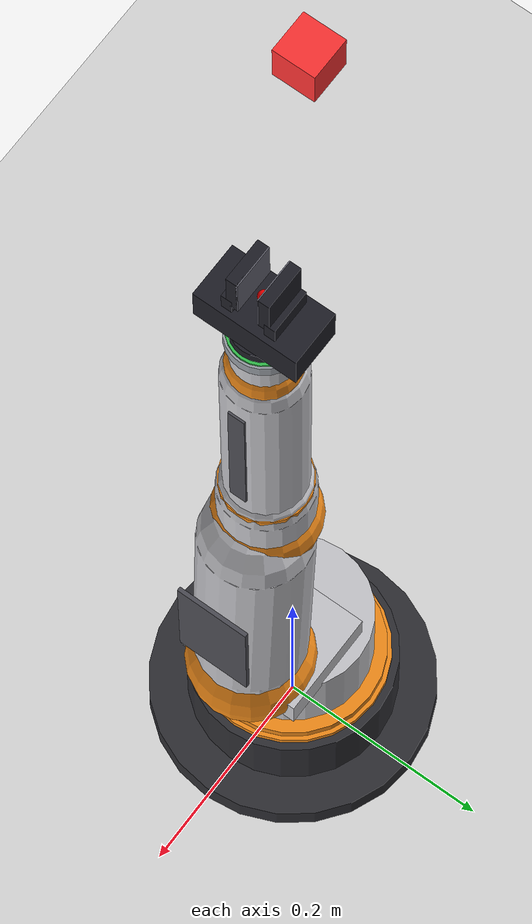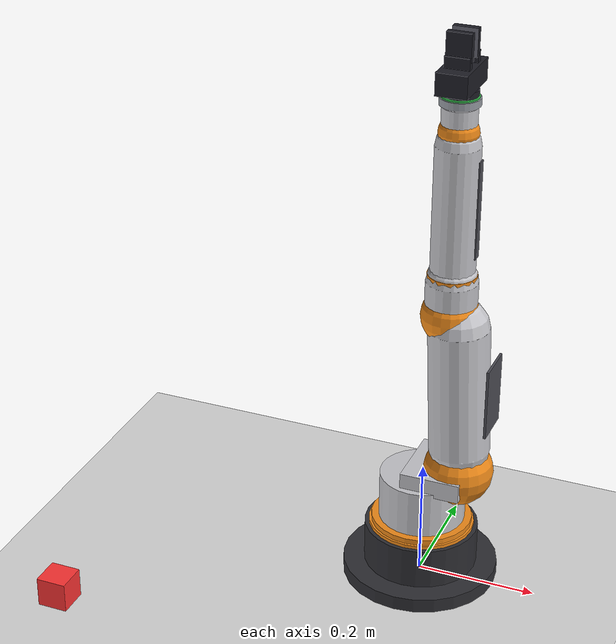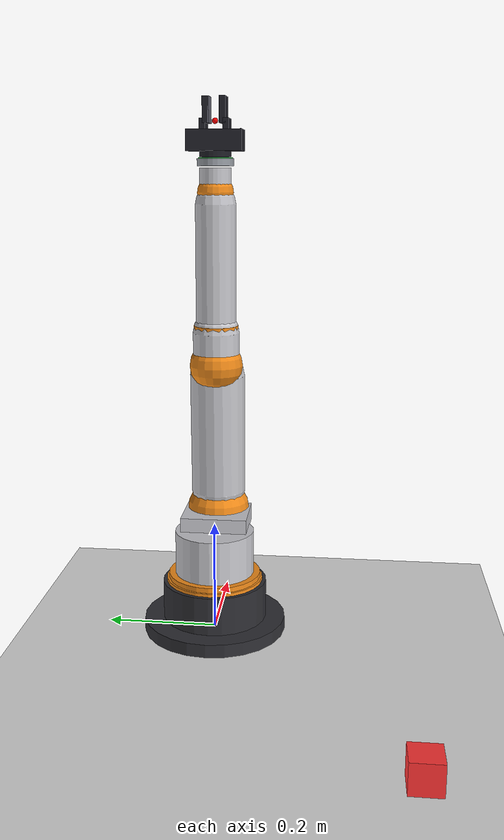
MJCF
<mujoco model="industrial_6axis_arm">
  <compiler angle="radian" coordinate="local" inertiafromgeom="false"/>
  <option timestep="0.002" gravity="0 0 -9.81" integrator="RK4"/>

  <default>
    <joint damping="3" armature="0.08" limited="true"/>
    <geom contype="1" conaffinity="1" friction="0.8 0.1 0.1" density="2700"/>
  </default>

  <asset>
    <material name="metal_silver"  rgba="0.78 0.78 0.80 1" specular="0.8" shininess="0.9"/>
    <material name="metal_dark"    rgba="0.30 0.30 0.33 1" specular="0.6" shininess="0.7"/>
    <material name="joint_orange"  rgba="0.95 0.55 0.10 1" specular="0.6" shininess="0.7"/>
    <material name="base_charcoal" rgba="0.18 0.18 0.20 1" specular="0.5" shininess="0.6"/>
    <material name="flange_steel"  rgba="0.60 0.62 0.65 1" specular="0.9" shininess="0.95"/>
    <material name="gripper_body"  rgba="0.12 0.12 0.15 1" specular="0.4" shininess="0.5"/>
    <material name="finger_pad"    rgba="0.40 0.40 0.45 1" specular="0.3" shininess="0.3"/>
  </asset>

  <worldbody>
    <!-- Ground plane -->
    <geom name="ground" type="plane" pos="0 0 0" size="5 5 0.1" rgba="0.85 0.85 0.85 1"/>

    <!-- Target object to grip -->
    <body name="target_object" pos="-0.5 -0.35 0.05">
      <freejoint/>
      <inertial pos="0 0 0" mass="0.2" diaginertia="0.0002 0.0002 0.0002"/>
      <geom name="target_box" type="box" size="0.025 0.025 0.025" rgba="1 0.2 0.2 1"/>
    </body>

    <!-- ══════════════════════════════════════════════════════
         BASE PEDESTAL — bolted to ground
         ══════════════════════════════════════════════════════ -->
    <body name="base_link" pos="0 0 0">
      <inertial pos="0 0 0.06" mass="12.0" diaginertia="0.10 0.10 0.06"/>
      <!-- Heavy cast-iron base plate -->
      <geom name="base_plate"   type="cylinder" pos="0 0 0.012" size="0.13 0.012" material="base_charcoal" contype="0" conaffinity="0"/>
      <geom name="base_body"    type="cylinder" pos="0 0 0.060" size="0.095 0.035" material="base_charcoal" contype="0" conaffinity="0"/>
      <geom name="base_col"     type="cylinder" pos="0 0 0.050" size="0.13 0.050"  rgba="0 0 0 0"/>
      <!-- Orange accent ring at top of base -->
      <geom name="base_accent"  type="cylinder" pos="0 0 0.098" size="0.088 0.003" material="joint_orange" contype="0" conaffinity="0"/>

      <!-- ═══ AXIS 1 — Base rotation (Z) ═══
           Turret / shoulder tower that rotates above the base -->
      <body name="link1" pos="0 0 0.10">
        <joint name="joint1" type="hinge" axis="0 0 1" range="-3.14159 3.14159"/>
        <inertial pos="0.02 0 0.06" mass="5.5" diaginertia="0.04 0.04 0.02"/>
        <!-- Rotating turret -->
        <geom name="j1_ring"    type="cylinder" pos="0 0 0.004"  size="0.084 0.006" material="joint_orange" contype="0" conaffinity="0"/>
        <geom name="j1_turret"  type="cylinder" pos="0 0 0.050"  size="0.072 0.040" material="metal_silver" contype="0" conaffinity="0"/>
        <geom name="j1_col"     type="cylinder" pos="0 0 0.050"  size="0.072 0.040" rgba="0 0 0 0"/>
        <!-- Shoulder housing — offset from center (this is the key industrial feature!) -->
        <geom name="j1_shoulder_housing" type="box" pos="0.03 0 0.10" size="0.05 0.06 0.016" material="metal_silver" contype="0" conaffinity="0"/>

        <!-- ═══ AXIS 2 — Shoulder lift (Y) ═══
             OFFSET 60mm forward from J1 axis — characteristic of 6-axis industrial arms -->
        <body name="link2" pos="0.06 0 0.11">
          <joint name="joint2" type="hinge" axis="0 1 0" range="-2.3562 2.3562"/>
          <inertial pos="-0.02 0 0.14" mass="4.5" diaginertia="0.06 0.06 0.01"/>
          <!-- Shoulder joint sphere (orange hub) -->
          <geom name="j2_hub"    type="sphere"  pos="0 0 0"  size="0.058" material="joint_orange" contype="0" conaffinity="0"/>
          <!-- Upper arm — muscular capsule rising 280mm -->
          <geom name="j2_arm_vis" type="capsule" fromto="0 0 0.04  -0.01 0 0.26" size="0.050" material="metal_silver" contype="0" conaffinity="0"/>
          <geom name="j2_arm_col" type="capsule" fromto="0 0 0.04  -0.01 0 0.26" size="0.050" rgba="0 0 0 0"/>
          <!-- KUKA-style brand plate on upper arm -->
          <geom name="j2_plate"   type="box" pos="0.051 0 0.15" size="0.002 0.035 0.06" material="metal_dark" contype="0" conaffinity="0"/>

          <!-- ═══ AXIS 3 — Elbow (Y) ═══
               At top of upper arm, with small offset a3 = 25mm -->
          <body name="link3" pos="-0.025 0 0.28">
            <joint name="joint3" type="hinge" axis="0 1 0" range="-2.53 2.53"/>
            <inertial pos="0.01 0 0.04" mass="3.0" diaginertia="0.02 0.02 0.005"/>
            <!-- Elbow joint sphere (orange hub) -->
            <geom name="j3_hub"      type="sphere"   pos="0 0 0"    size="0.048" material="joint_orange" contype="0" conaffinity="0"/>
            <!-- Short elbow housing that transitions to the forearm -->
            <geom name="j3_housing"  type="capsule"   fromto="0 0 0.02  0 0 0.06" size="0.042" material="metal_silver" contype="0" conaffinity="0"/>
            <geom name="j3_col"      type="capsule"   fromto="0 0 0.02  0 0 0.06" size="0.042" rgba="0 0 0 0"/>

            <!-- ═══ AXIS 4 — Forearm inline roll (Z) ═══
                 J4 rotates the entire forearm tube about its own long axis
                 This is the defining feature of an industrial 6-axis arm -->
            <body name="link4" pos="0 0 0.065">
              <joint name="joint4" type="hinge" axis="0 0 1" range="-3.14159 3.14159"/>
              <inertial pos="0 0 0.11" mass="2.2" diaginertia="0.015 0.015 0.003"/>
              <!-- Orange ring at J4 start -->
              <geom name="j4_ring"     type="cylinder" pos="0 0 0.003" size="0.040 0.005" material="joint_orange" contype="0" conaffinity="0"/>
              <!-- Forearm tube — 250mm long cylindrical segment that rolls inline -->
              <geom name="j4_tube_vis" type="capsule"  fromto="0 0 0.01  0 0 0.22" size="0.036" material="metal_silver" contype="0" conaffinity="0"/>
              <geom name="j4_tube_col" type="capsule"  fromto="0 0 0.01  0 0 0.22" size="0.036" rgba="0 0 0 0"/>
              <!-- Decorative seam line along the forearm -->
              <geom name="j4_seam"     type="box"      pos="0.037 0 0.12" size="0.001 0.008 0.08" material="metal_dark" contype="0" conaffinity="0"/>

              <!-- ═══ AXIS 5 — Wrist bend (Y) ═══
                   Compact wrist — axes 4, 5, 6 form a spherical wrist -->
              <body name="link5" pos="0 0 0.24">
                <joint name="joint5" type="hinge" axis="0 1 0" range="-2.0944 2.0944"/>
                <inertial pos="0 0 0.022" mass="1.0" diaginertia="0.003 0.003 0.002"/>
                <!-- Wrist hub (orange) -->
                <geom name="j5_hub"      type="sphere"   pos="0 0 0"     size="0.032" material="joint_orange" contype="0" conaffinity="0"/>
                <!-- Wrist body -->
                <geom name="j5_body_vis" type="cylinder"  pos="0 0 0.026" size="0.028 0.016" material="metal_silver" contype="0" conaffinity="0"/>
                <geom name="j5_body_col" type="cylinder"  pos="0 0 0.026" size="0.028 0.016" rgba="0 0 0 0"/>

                <!-- ═══ AXIS 6 — Tool flange rotation (Z) ═══ -->
                <body name="link6" pos="0 0 0.045">
                  <joint name="joint6" type="hinge" axis="0 0 1" range="-3.14159 3.14159"/>
                  <inertial pos="0 0 0.012" mass="0.5" diaginertia="0.001 0.001 0.001"/>
                  <!-- ISO 9409-1 tool flange -->
                  <geom name="flange_vis"    type="cylinder" pos="0 0 0.006" size="0.032 0.006" material="flange_steel" contype="0" conaffinity="0"/>
                  <geom name="flange_col"    type="cylinder" pos="0 0 0.006" size="0.032 0.006" rgba="0 0 0 0"/>
                  <geom name="flange_index"  type="cylinder" pos="0 0 0.013" size="0.030 0.001" rgba="0.2 0.75 0.3 1" contype="0" conaffinity="0"/>

                  <body name="gripper_body" pos="0 0 0.015">
                    <inertial pos="0 0 0.025" mass="0.6" diaginertia="0.002 0.002 0.001"/>
                    <!-- Gripper actuator housing -->
                    <geom name="grip_mount_vis"  type="cylinder" pos="0 0 0.005" size="0.028 0.005" material="gripper_body" contype="0" conaffinity="0"/>
                    <geom name="grip_body_vis"   type="box"      pos="0 0 0.028" size="0.025 0.048 0.018" material="gripper_body" contype="0" conaffinity="0"/>
                    <geom name="grip_body_col"   type="box"      pos="0 0 0.028" size="0.025 0.048 0.018" rgba="0 0 0 0"/>

                    <!-- ── Left finger (+Y side, slides open) ── -->
                    <body name="left_finger" pos="0 0.015 0.046">
                      <joint name="left_finger_joint" type="slide" axis="0 1 0" range="0 0.04" damping="15"/>
                      <inertial pos="0 0.008 0.022" mass="0.08" diaginertia="0.00015 0.00008 0.00015"/>
                      <!-- Finger body -->
                      <geom name="lf_body_vis"  type="box" pos="0 0.005 0.004" size="0.020 0.005 0.014" material="gripper_body" contype="0" conaffinity="0"/>
                      <geom name="lf_tip_vis"   type="box" pos="0 0 0.032"     size="0.020 0.005 0.022" material="gripper_body" contype="0" conaffinity="0"/>
                      <geom name="lf_tip_col"   type="box" pos="0 0 0.032"     size="0.020 0.005 0.022" rgba="0 0 0 0"/>
                      <!-- Inner grip pad — wider/taller area, high friction -->
                      <geom name="left_pad"     type="box" pos="0 -0.005 0.032" size="0.020 0.001 0.022" material="finger_pad" friction="4.0 1.0 1.0"/>
                      <!-- Site defines the touch-sensor zone (same volume as the pad) -->
                      <site name="left_pad_site" type="box" pos="0 -0.005 0.032" size="0.020 0.001 0.022" rgba="0 0 1 0"/>
                    </body>

                    <!-- ── Right finger (−Y side, slides open) ── -->
                    <body name="right_finger" pos="0 -0.015 0.046">
                      <joint name="right_finger_joint" type="slide" axis="0 -1 0" range="0 0.04" damping="15"/>
                      <inertial pos="0 -0.008 0.022" mass="0.08" diaginertia="0.00015 0.00008 0.00015"/>
                      <!-- Finger body -->
                      <geom name="rf_body_vis"  type="box" pos="0 -0.005 0.004" size="0.020 0.005 0.014" material="gripper_body" contype="0" conaffinity="0"/>
                      <geom name="rf_tip_vis"   type="box" pos="0 0 0.032"      size="0.020 0.005 0.022" material="gripper_body" contype="0" conaffinity="0"/>
                      <geom name="rf_tip_col"   type="box" pos="0 0 0.032"      size="0.020 0.005 0.022" rgba="0 0 0 0"/>
                      <!-- Inner grip pad — wider/taller area, high friction -->
                      <geom name="right_pad"    type="box" pos="0 0.005 0.032"  size="0.020 0.001 0.022" material="finger_pad" friction="4.0 1.0 1.0"/>
                      <!-- Site defines the touch-sensor zone (same volume as the pad) -->
                      <site name="right_pad_site" type="box" pos="0 0.005 0.032" size="0.020 0.001 0.022" rgba="0 0 1 0"/>
                    </body>

                    <!-- TCP (Tool Center Point) -->
                    <site name="ee_site" pos="0 0 0.06" size="0.005" rgba="1 0 0 1"/>
                  </body>

                </body>
              </body>
            </body>
          </body>
        </body>
      </body>
    </body>
  </worldbody>

  <equality>
    <!-- Couple left & right gripper fingers (mirror motion) -->
    <joint joint1="left_finger_joint" joint2="right_finger_joint" polycoef="0 1 0 0 0"/>
  </equality>

  <actuator>
    <!-- 6-axis arm — position servos with industrial-grade stiffness -->
    <position name="m_joint1" joint="joint1" kp="400" ctrlrange="-3.14159 3.14159"/>
    <position name="m_joint2" joint="joint2" kp="400" ctrlrange="-2.3562  2.3562"/>
    <position name="m_joint3" joint="joint3" kp="300" ctrlrange="-2.53    2.53"/>
    <position name="m_joint4" joint="joint4" kp="150" ctrlrange="-3.14159 3.14159"/>
    <position name="m_joint5" joint="joint5" kp="150" ctrlrange="-2.0944  2.0944"/>
    <position name="m_joint6" joint="joint6" kp="80"  ctrlrange="-3.14159 3.14159"/>
    <!-- Parallel-jaw gripper (coupled: one actuator drives both fingers) -->
    <position name="m_gripper" joint="left_finger_joint" kp="250" ctrlrange="0 0.04"/>

  </actuator>
  <sensor>
      <!--framepos for the end-effector-->
    <framepos objtype="site" objname="ee_site"/>
    <framelinvel objtype="site" objname="ee_site"/>
    <!-- Touch sensors on the inner grip pads – return total normal force (N) -->
    <touch name="left_touch"  site="left_pad_site"/>
    <touch name="right_touch" site="right_pad_site"/>
  </sensor>
</mujoco>
